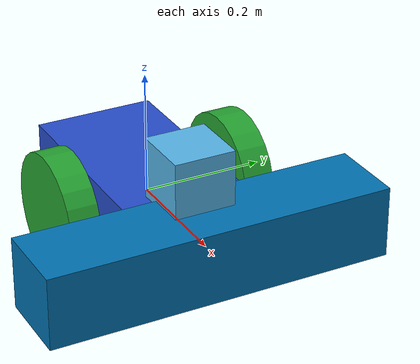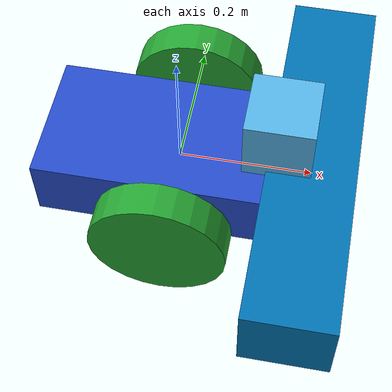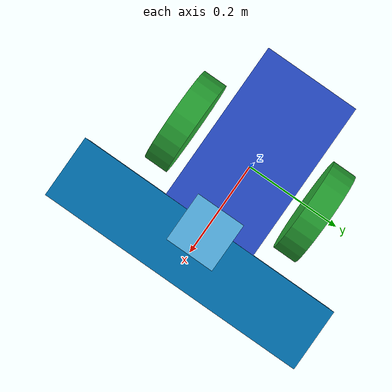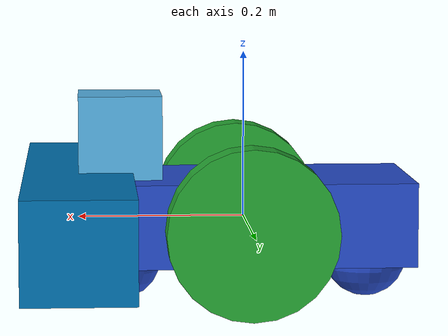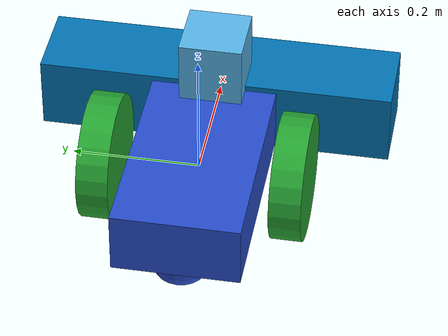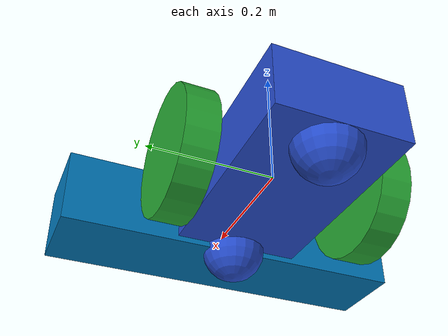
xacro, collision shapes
<?xml version="1.0"?>
<!--
    - Base      : my_base
    - 3d Sensor : r200
    - 2d Sensor : hokuyo
-->
<robot name="my_robot" xmlns:xacro="http://www.ros.org/wiki/xacro">

  <xacro:include filename="$(find my_robot)/urdf/library.urdf.xacro" />

  <my_base/>
  <sensor_r200    parent="chassis"/>
  <sensor_hokuyo    parent="chassis"/>
</robot>

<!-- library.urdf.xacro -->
<!--
  The complete library of xacros for easy reference
 -->
<robot xmlns:xacro="http://www.ros.org/wiki/xacro">
  <!-- General -->
  <xacro:include filename="$(find my_robot)/urdf/common.urdf.xacro"/>
  <!-- Bases -->
  <xacro:include filename="$(find my_robot)/urdf/base/base.urdf.xacro" />
  <!-- 3D Sensors -->
  <xacro:include filename="$(find my_robot)/urdf/sensors/r200.urdf.xacro"/>
  <!-- 2D Sensors -->
  <xacro:include filename="$(find my_robot)/urdf/sensors/hokuyo.urdf.xacro"/>
</robot>

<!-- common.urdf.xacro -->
<robot name="xacro_properties" xmlns:xacro="http://www.ros.org/wiki/xacro">
  <xacro:property name="M_PI" value="3.1415926535897931" />

  <property name="r200_cam_rgb_px" value="0.005"/>
  <property name="r200_cam_rgb_py" value="0.018"/>
  <property name="r200_cam_rgb_pz" value="0.013"/>
  <property name="r200_cam_depth_offset" value="0.01"/>

</robot>

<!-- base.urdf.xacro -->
<robot name="my_base" xmlns:xacro="http://www.ros.org/wiki/xacro">
  <xacro:include filename="$(find my_robot)/urdf/common.urdf.xacro" />
  <xacro:include filename="$(find my_robot)/urdf/base/base_gazebo.urdf.xacro" />
  <xacro:macro name="my_base">

    <link name="robot_footprint"></link>

    <joint name="robot_footprint_joint" type="fixed">
      <origin xyz="0 0 0" rpy="0 0 0" />
      <parent link="robot_footprint"/>
      <child link="chassis" />
    </joint>

    <joint name="left_wheel_hinge" type="continuous">
      <origin xyz="0 0.15 0" rpy="0 0 0"/>
      <child link="left_wheel"/>
      <parent link="chassis"/>
      <axis xyz="0 1 0" rpy="0 0 0"/>
      <limit effort="10000" velocity="1000"/>
      <dynamics damping="1.0" friction="1.0"/>
    </joint>

    <joint name="right_wheel_hinge" type="continuous">
      <origin xyz="0 -0.15 0" rpy="0 0 0"/>
      <child link="right_wheel"/>
      <parent link="chassis"/>
      <axis xyz="0 1 0" rpy="0 0 0"/>
      <limit effort="10000" velocity="1000"/>
      <dynamics damping="1.0" friction="1.0"/>
    </joint>

      <link name='chassis'>
      <pose>0 0 0.1 0 0 0</pose>

      <inertial>
        <mass value="15.0"/>
        <origin xyz="0.0 0 0" rpy=" 0 0 0"/>
        <inertia
            ixx="0.1" ixy="0" ixz="0"
            iyy="0.1" iyz="0"
            izz="0.1"
        />
      </inertial>

      <collision name='collision'>
        <origin xyz="0 0 0" rpy=" 0 0 0"/>
        <geometry>
          <box size=".4 .2 .1"/>
        </geometry>
      </collision>

      <visual name='chassis_visual'>
        <origin xyz="0 0 0" rpy=" 0 0 0"/>
        <geometry>
          <box size=".4 .2 .1"/>
        </geometry>
      </visual>

      <collision name='back_caster_collision'>
        <origin xyz="-0.15 0 -0.05" rpy=" 0 0 0"/>
        <geometry>
          <sphere radius="0.0499"/>
        </geometry>
      </collision>

      <visual name='back_caster_visual'>
        <origin xyz="-0.15 0 -0.05" rpy=" 0 0 0"/>
        <geometry>
          <sphere radius="0.05"/>
        </geometry>
      </visual>

      <collision name='front_caster_collision'>
        <origin xyz="0.15 0 -0.05" rpy=" 0 0 0"/>
        <geometry>
          <sphere radius="0.0499"/>
        </geometry>
      </collision>

      <visual name='front_caster_visual'>
        <origin xyz="0.15 0 -0.05" rpy=" 0 0 0"/>
        <geometry>
          <sphere radius="0.05"/>
        </geometry>
      </visual>

    </link>

    <link name="left_wheel">
      <pose>0 0 0 0 0 0</pose>

      <inertial>
        <origin xyz="0.0 0.0 0.0" rpy="0.0 1.5707 1.5707"/>
        <mass value="5"/>
        <inertia ixx="0.1" ixy="0.0" ixz="0.0" iyy="0.1" iyz="0.0" izz="0.1"/>
      </inertial>

      <collision>
        <origin xyz="0.0 0.0 0.0" rpy="0.0 1.5707 1.5707"/>
        <geometry>
          <cylinder radius="0.1" length="0.05"/>
        </geometry>
      </collision>

      <visual name="left_wheel_visual">
        <origin xyz="0.0 0.0 0.0" rpy="0.0 1.5807 1.5707"/>
        <geometry>
          <cylinder radius="0.1" length="0.05"/>
        </geometry>
      </visual>
    </link>

    <link name="right_wheel">
      <pose>0 0 0 0 0 0</pose>

      <inertial>
        <origin xyz="0.0 0.0 0.0" rpy="0.0 1.5707 1.5707"/>
        <mass value="5"/>
        <inertia ixx="0.1" ixy="0.0" ixz="0.0" iyy="0.1" iyz="0.0" izz="0.1"/>
      </inertial>

      <collision>
        <origin xyz="0.0 0.0 0.0" rpy="0.0 1.5707 1.5707"/>
        <geometry>
          <cylinder radius="0.1" length="0.05"/>
        </geometry>
      </collision>

      <visual name="right_wheel_visual">
        <origin xyz="0.0 0.0 0.0" rpy="0.0 1.5807 1.5707"/>
        <geometry>
          <cylinder radius="0.1" length="0.05"/>
        </geometry>
      </visual>
    </link>

    <!-- my_base Gazebo simulation details -->
    <base_sim/>

  </xacro:macro>

</robot>

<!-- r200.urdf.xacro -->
<robot name="sensor_r200" xmlns:xacro="http://www.ros.org/wiki/xacro">
  <xacro:include filename="$(find my_robot)/urdf/common.urdf.xacro" />
  <xacro:include filename="$(find my_robot)/urdf/sensors/r200_gazebo.urdf.xacro" />

  <xacro:macro name="sensor_r200" params="parent">
    <!-- camera body -->
    <joint name="camera_joint" type="fixed">
      <origin xyz="0.2 0.0 0.0" rpy="0 0 0"/>
      <parent link="${parent}"/>
      <child link="camera" />
    </joint>
    <link name="camera">
      <visual>
       <origin xyz="0 0 0" rpy="${M_PI/2} 0 ${M_PI/2}"/>
        <geometry>
         <mesh filename="package://my_robot/meshes/r200.dae" />
        </geometry>
      </visual>
      <collision>
        <origin xyz="0.0 0.0 0.0" rpy="0 0 0"/>
        <geometry>
          <box size="0.130 0.567 0.118"/>
        </geometry>
      </collision>

      <!-- This inertial field needs doesn't contain reliable data!! -->
     <inertial>
        <mass value="0.564" />
        <origin xyz="0 0 0" />
        <inertia ixx="0.003881243" ixy="0.0" ixz="0.0"
                 iyy="0.000498940" iyz="0.0"
                 izz="0.003879257" />
      </inertial>
    </link>

    <!--
    ==  RGB joints & links ==
    -->

    <joint name="camera_rgb_joint" type="fixed">
      <origin xyz="${r200_cam_rgb_px} ${r200_cam_rgb_py} ${r200_cam_rgb_pz}" rpy="0 0 0"/>
      <parent link="camera"/>
      <child link="camera_rgb_frame" />
    </joint>
    <link name="camera_rgb_frame"/>

    <joint name="camera_rgb_optical_joint" type="fixed">
      <origin xyz="0 0 0" rpy="${-M_PI/2} 0 ${-M_PI/2}" />
      <parent link="camera_rgb_frame" />
      <child link="camera_rgb_optical_frame" />
    </joint>
    <link name="camera_rgb_optical_frame"/>

    <!--
    ==  Depth joints & links ==
    -->

    <joint name="camera_depth_joint" type="fixed">
        <origin xyz="0 ${r200_cam_depth_offset} 0" rpy="0 0 0" />
        <parent link="camera_rgb_frame" />
        <child link="camera_depth_frame" />
    </joint>
    <link name="camera_depth_frame"/>

    <joint name="camera_depth_optical_joint" type="fixed">
        <origin xyz="0 0 0" rpy="${-M_PI/2} 0 ${-M_PI/2}" />
        <parent link="camera_depth_frame" />
        <child link="camera_depth_optical_frame" />
    </joint>
    <link name="camera_depth_optical_frame"/>

  	<!-- Simulation sensor -->
    <r200_sim/>
  </xacro:macro>
</robot>

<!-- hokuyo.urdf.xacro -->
<robot name="sensor_hokuyo" xmlns:xacro="http://www.ros.org/wiki/xacro">
  <xacro:include filename="$(find my_robot)/urdf/common.urdf.xacro" />
  <xacro:include filename="$(find my_robot)/urdf/sensors/hokuyo_gazebo.urdf.xacro" />
  <!-- Set location of lidar as parameters. distance from center of bottom of base in meters -->
  <xacro:macro name="sensor_hokuyo" params="parent">

    <joint name="hokuyo_joint" type="fixed">
      <origin xyz="0.15 0.0 .1" rpy="0.0 0.0 0.0"/>
      <parent link="${parent}"/>
      <child link="hokuyo"/>
      <axis xyz="0.0 1.0 0.0"/>
    </joint>

    <link name="hokuyo">
      <pose>0 0 0 0 0 0</pose>

      <inertial>
        <origin xyz="0.0 0.0 0.0" rpy="0.0 0.0 0.0"/>
        <mass value="1e-5"/>
        <inertia ixx="1e-6" ixy="0.0" ixz="0.0" iyy="1e-6" iyz="0.0" izz="1e-6"/>
      </inertial>

      <visual name="hokuyo_visual">
        <origin xyz="0.0 0.0 0.0" rpy="0.0 0.0 0.0"/>
        <geometry>
          <mesh filename="package://my_robot/meshes/hokuyo.dae" />
        </geometry>
      </visual>

      <collision>
        <origin xyz="0.0 0.0 0.0" rpy="0.0 0.0 0.0"/>
        <geometry>
          <box size="0.1 0.1 0.1"/>
        </geometry>
      </collision>
    </link>

    <!-- my_base Gazebo simulation details -->
    <hokuyo_sim/>

  </xacro:macro>
</robot>
